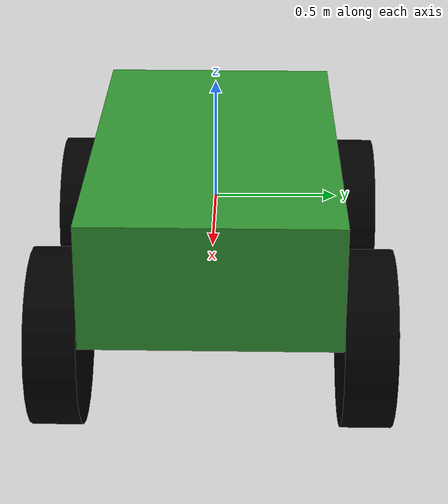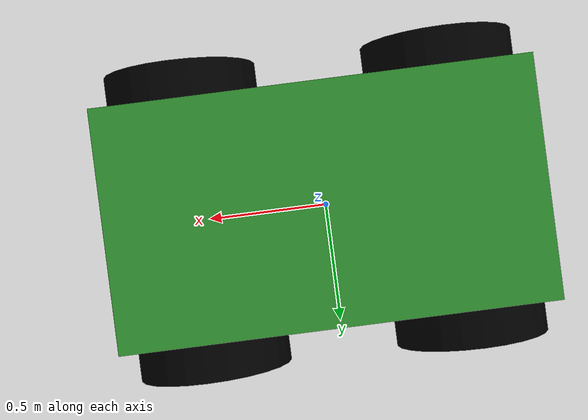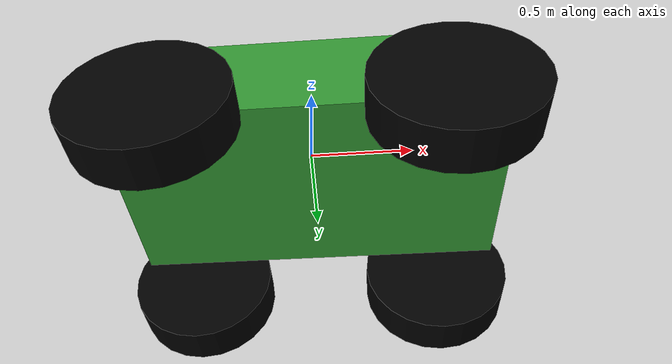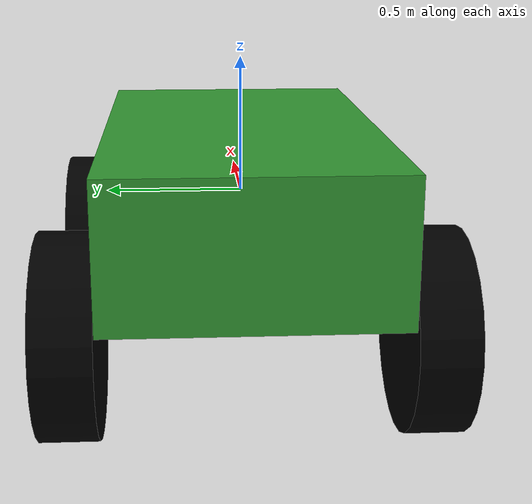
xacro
<?xml version="1.0" ?>
<robot name="agri_robot">
  <!-- Materials -->
  <material name="white">
    <color rgba="1 1 1 1"/>
  </material>
  <material name="green">
    <color rgba="0.2 0.6 0.2 1"/>
  </material>
  <material name="black">
    <color rgba="0 0 0 1"/>
  </material>

  <!-- CHASSIS LINK (Articulation Root) -->
  <link name="chassis">
    <inertial>
      <mass value="60.0"/>
      <inertia ixx="6.25" ixy="0" ixz="0" iyy="17.45" iyz="0" izz="21.2"/>
    </inertial>
    <visual>
      <origin xyz="0 0 0"/>
      <geometry>
        <box size="1.8 1.0 0.5"/>
      </geometry>
      <material name="green"/>
    </visual>
    <collision>
      <origin xyz="0 0 0"/>
      <geometry>
        <box size="1.8 1.0 0.5"/>
      </geometry>
    </collision>
  </link>

  <!-- REAR LEFT WHEEL -->
  <joint name="rear_left_wheel_joint" type="continuous">
    <parent link="chassis"/>
    <child link="rear_left_wheel"/>
    <origin rpy="-1.5708 0 0" xyz="-0.6 0.6 -0.35"/>
    <axis xyz="0 0 1"/>
  </joint>
  <link name="rear_left_wheel">
    <inertial>
      <mass value="4.0"/>
      <inertia ixx="0.245" ixy="0" ixz="0" iyy="0.1358" iyz="0" izz="0.1358"/>
    </inertial>
    <visual>
      <geometry>
        <cylinder length="0.2" radius="0.35"/>
      </geometry>
      <material name="black"/>
    </visual>
    <collision>
      <geometry>
        <cylinder length="0.2" radius="0.35"/>
      </geometry>
    </collision>
  </link>

  <!-- REAR RIGHT WHEEL -->
  <joint name="rear_right_wheel_joint" type="continuous">
    <parent link="chassis"/>
    <child link="rear_right_wheel"/>
    <origin rpy="1.5708 0 0" xyz="-0.6 -0.6 -0.35"/>
    <axis xyz="0 0 1"/>
  </joint>
  <link name="rear_right_wheel">
    <inertial>
      <mass value="4.0"/>
      <inertia ixx="0.245" ixy="0" ixz="0" iyy="0.1358" iyz="0" izz="0.1358"/>
    </inertial>
    <visual>
      <geometry>
        <cylinder length="0.2" radius="0.35"/>
      </geometry>
      <material name="black"/>
    </visual>
    <collision>
      <geometry>
        <cylinder length="0.2" radius="0.35"/>
      </geometry>
    </collision>
  </link>

  <!-- FRONT LEFT WHEEL (Passive) -->
  <joint name="front_left_wheel_joint" type="continuous">
    <parent link="chassis"/>
    <child link="front_left_wheel"/>
    <origin rpy="-1.5708 0 0" xyz="0.6 0.6 -0.35"/>
    <axis xyz="0 0 1"/>
  </joint>
  <link name="front_left_wheel">
    <visual>
      <geometry>
        <cylinder length="0.2" radius="0.35"/>
      </geometry>
      <material name="black"/>
    </visual>
    <collision>
      <geometry>
        <cylinder length="0.2" radius="0.35"/>
      </geometry>
    </collision>
  </link>

  <!-- FRONT RIGHT WHEEL (Passive) -->
  <joint name="front_right_wheel_joint" type="continuous">
    <parent link="chassis"/>
    <child link="front_right_wheel"/>
    <origin rpy="1.5708 0 0" xyz="0.6 -0.6 -0.35"/>
    <axis xyz="0 0 1"/>
  </joint>
  <link name="front_right_wheel">
    <visual>
      <geometry>
        <cylinder length="0.2" radius="0.35"/>
      </geometry>
      <material name="black"/>
    </visual>
    <collision>
      <geometry>
        <cylinder length="0.2" radius="0.35"/>
      </geometry>
    </collision>
  </link>

</robot>
